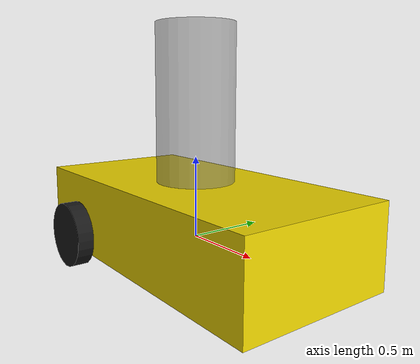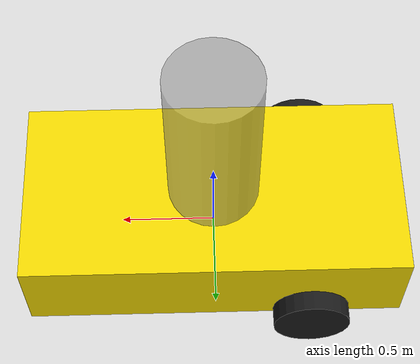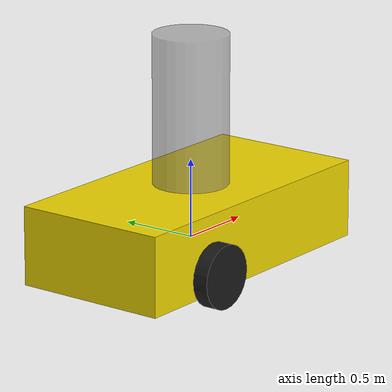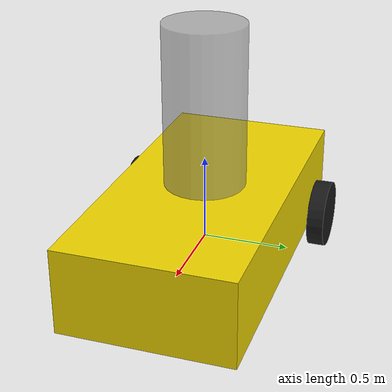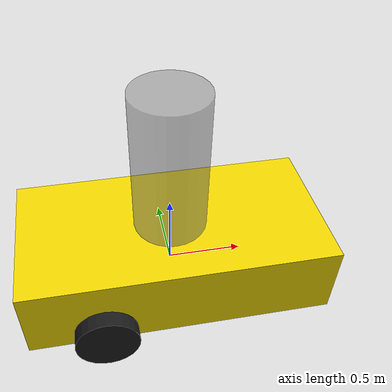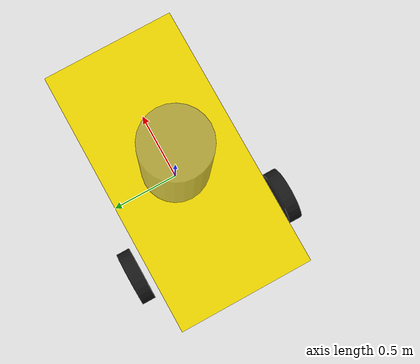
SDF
<?xml version="1.0"?>
<sdf version="1.10">
  <model name="traffic_robot_yellow" canonical_link="base_link">
    <self_collide>false</self_collide>

    <!-- LiDAR mount frame, declared at model level (matches vehicle_blue convention). -->
    <frame name="lidar_frame" attached_to="base_link">
      <pose>0 0 0.20 0 0 0</pose>
    </frame>

    <!-- ====== CHASSIS (base_link) — sensors nested inside, matching vehicle_blue ====== -->
    <link name="base_link">
      <pose>0 0 0 0 0 0</pose>
      <inertial>
        <mass>5.0</mass>
        <inertia>
          <ixx>0.181667</ixx>
          <iyy>0.483333</iyy>
          <izz>0.566667</izz>
          <ixy>0</ixy><ixz>0</ixz><iyz>0</iyz>
        </inertia>
      </inertial>
      <visual name="visual">
        <pose>0 0 0.1 0 0 0</pose>
        <geometry>
          <box><size>2.0 1.0 0.5</size></box>
        </geometry>
        <material>
          <ambient>0.5 0.45 0.0 1</ambient>
          <diffuse>0.95 0.85 0.0 1</diffuse>
          <specular>0.2 0.18 0.0 1</specular>
        </material>
      </visual>
      <collision name="collision">
        <pose>0 0 0.1 0 0 0</pose>
        <geometry>
          <box><size>2.0 1.0 0.5</size></box>
        </geometry>
      </collision>

      <!-- ====== DETECTION BAR (for lidar visibility) ====== -->
      <visual name="detection_bar_visual">
        <pose>0 0 0.80 0 0 0</pose>
        <geometry>
          <cylinder><radius>0.24</radius><length>1.0</length></cylinder>
        </geometry>
        <material>
          <ambient>0.3 0.3 0.3 0.5</ambient>
          <diffuse>0.5 0.5 0.5 0.5</diffuse>
        </material>
      </visual>
      <collision name="detection_bar_collision">
        <pose>0 0 0.80 0 0 0</pose>
        <geometry>
          <cylinder><radius>0.24</radius><length>1.0</length></cylinder>
        </geometry>
      </collision>

      <!-- ====== LIDAR (reduced spec per D-T5) — nested inside base_link to match vehicle_blue ====== -->
      <sensor name="gpu_lidar" type="gpu_lidar">
        <gz_frame_id>lidar_link</gz_frame_id>
        <pose relative_to="lidar_frame">0 0 0 0 0 0</pose>
        <update_rate>5</update_rate>
        <always_on>1</always_on>
        <visualize>false</visualize>
        <ray>
          <scan>
            <horizontal>
              <samples>45</samples>
              <resolution>1</resolution>
              <min_angle>-3.14159</min_angle>
              <max_angle>3.14159</max_angle>
            </horizontal>
            <vertical>
              <samples>1</samples>
              <resolution>1</resolution>
              <min_angle>0</min_angle>
              <max_angle>0</max_angle>
            </vertical>
          </scan>
          <range>
            <min>0.20</min>
            <max>5.0</max>
            <resolution>0.02</resolution>
          </range>
        </ray>
      </sensor>
    </link>

    <!-- ====== LEFT WHEEL ====== -->
    <link name="left_wheel">
      <pose relative_to="base_link">-0.5 0.6 0 -1.5707 0 0</pose>
      <inertial>
        <mass>0.5</mass>
        <inertia>
          <ixx>0.005625</ixx>
          <iyy>0.005625</iyy>
          <izz>0.010000</izz>
          <ixy>0</ixy><ixz>0</ixz><iyz>0</iyz>
        </inertia>
      </inertial>
      <visual name="visual">
        <geometry>
          <cylinder><radius>0.2</radius><length>0.1</length></cylinder>
        </geometry>
        <material>
          <ambient>0.05 0.05 0.05 1</ambient>
          <diffuse>0.1 0.1 0.1 1</diffuse>
        </material>
      </visual>
      <collision name="collision">
        <geometry>
          <cylinder><radius>0.2</radius><length>0.1</length></cylinder>
        </geometry>
        <surface>
          <friction>
            <ode><mu>1.0</mu><mu2>1.0</mu2></ode>
          </friction>
        </surface>
      </collision>
    </link>

    <!-- ====== RIGHT WHEEL ====== -->
    <link name="right_wheel">
      <pose relative_to="base_link">-0.5 -0.6 0 -1.5707 0 0</pose>
      <inertial>
        <mass>0.5</mass>
        <inertia>
          <ixx>0.005625</ixx>
          <iyy>0.005625</iyy>
          <izz>0.010000</izz>
          <ixy>0</ixy><ixz>0</ixz><iyz>0</iyz>
        </inertia>
      </inertial>
      <visual name="visual">
        <geometry>
          <cylinder><radius>0.2</radius><length>0.1</length></cylinder>
        </geometry>
        <material>
          <ambient>0.05 0.05 0.05 1</ambient>
          <diffuse>0.1 0.1 0.1 1</diffuse>
        </material>
      </visual>
      <collision name="collision">
        <geometry>
          <cylinder><radius>0.2</radius><length>0.1</length></cylinder>
        </geometry>
        <surface>
          <friction>
            <ode><mu>1.0</mu><mu2>1.0</mu2></ode>
          </friction>
        </surface>
      </collision>
    </link>

    <!-- ====== CASTER (front ball) ====== -->
    <link name="caster">
      <pose relative_to="base_link">0.8 0 -0.2 0 0 0</pose>
      <inertial>
        <mass>0.1</mass>
        <inertia>
          <ixx>0.0001</ixx>
          <iyy>0.0001</iyy>
          <izz>0.0001</izz>
          <ixy>0</ixy><ixz>0</ixz><iyz>0</iyz>
        </inertia>
      </inertial>
      <visual name="visual">
        <geometry>
          <sphere><radius>0.05</radius></sphere>
        </geometry>
        <material>
          <ambient>0.05 0.05 0.05 1</ambient>
          <diffuse>0.1 0.1 0.1 1</diffuse>
        </material>
      </visual>
      <collision name="collision">
        <geometry>
          <sphere><radius>0.05</radius></sphere>
        </geometry>
        <surface>
          <friction>
            <ode><mu>0.05</mu><mu2>0.05</mu2></ode>
          </friction>
        </surface>
      </collision>
    </link>

    <!-- ====== JOINTS ====== -->
    <joint name="left_wheel_joint" type="revolute">
      <parent>base_link</parent>
      <child>left_wheel</child>
      <axis>
        <xyz expressed_in="__model__">0 1 0</xyz>
        <limit>
          <lower>-1e16</lower>
          <upper>1e16</upper>
        </limit>
      </axis>
    </joint>

    <joint name="right_wheel_joint" type="revolute">
      <parent>base_link</parent>
      <child>right_wheel</child>
      <axis>
        <xyz expressed_in="__model__">0 1 0</xyz>
        <limit>
          <lower>-1e16</lower>
          <upper>1e16</upper>
        </limit>
      </axis>
    </joint>

    <joint name="caster_wheel" type="ball">
      <parent>base_link</parent>
      <child>caster</child>
    </joint>

    <!-- ====== DIFF-DRIVE PLUGIN ====== -->
	<plugin filename="ignition-gazebo-diff-drive-system" name="ignition::gazebo::systems::DiffDrive">
	    <left_joint>left_wheel_joint</left_joint>
	    <right_joint>right_wheel_joint</right_joint>
	    <wheel_separation>0.6</wheel_separation>
	    <wheel_radius>0.2</wheel_radius>
	    <odom_publish_frequency>10.0</odom_publish_frequency>
	    <frame_id>odom</frame_id>
	    <child_frame_id>base_link</child_frame_id>
	    <max_linear_velocity>2.5</max_linear_velocity>
	    <max_angular_velocity>3.0</max_angular_velocity>
	    <max_linear_acceleration>4.0</max_linear_acceleration>
	    <max_angular_acceleration>5.0</max_angular_acceleration>
	</plugin>

  </model>
</sdf>
